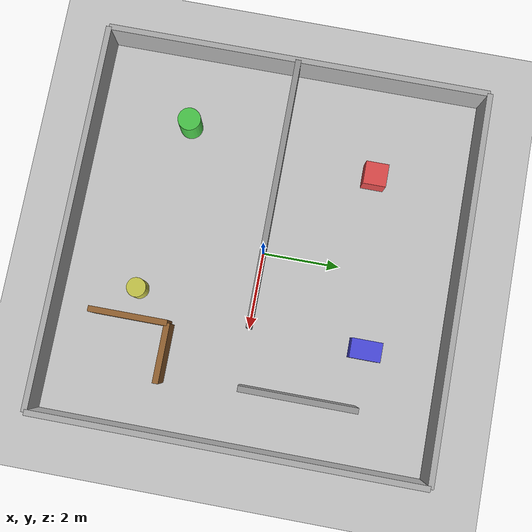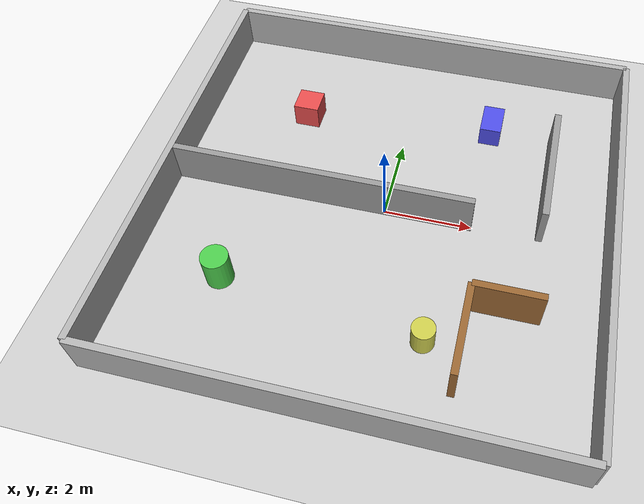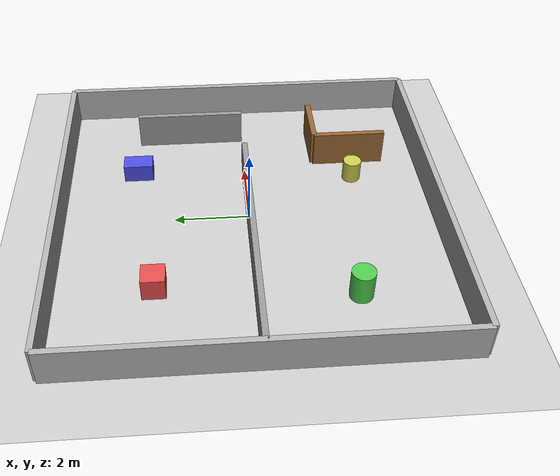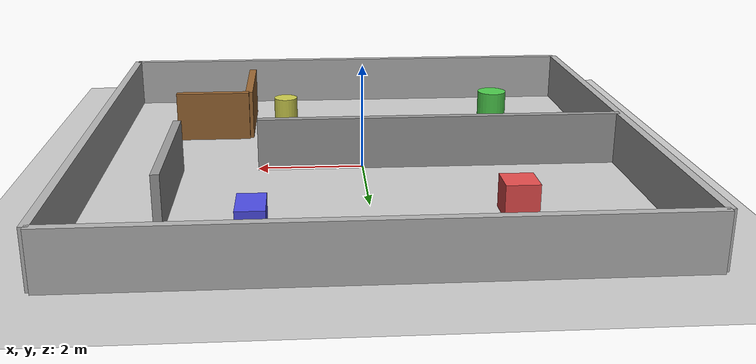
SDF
<?xml version="1.0" ?>
<sdf version="1.6">
  <world name="jetauto_test_world">

    <!-- Physics -->
    <physics type="ode">
      <real_time_update_rate>1000.0</real_time_update_rate>
      <max_step_size>0.001</max_step_size>
      <real_time_factor>1</real_time_factor>
    </physics>

    <!-- Sun -->
    <include>
      <uri>model://sun</uri>
    </include>

    <!-- Ground Plane -->
    <include>
      <uri>model://ground_plane</uri>
    </include>

    <scene>
      <ambient>0.4 0.4 0.4 1</ambient>
      <background>0.7 0.7 0.7 1</background>
      <shadows>true</shadows>
    </scene>

    <!-- GUI camera -->
    <gui fullscreen="0">
      <camera name="user_camera">
        <pose>0 0 12 0 1.5707 0</pose>
        <view_controller>orbit</view_controller>
      </camera>
    </gui>

    <!-- ==================== WALLS (outer boundary) ==================== -->
    <!-- North wall -->
    <model name="wall_north">
      <static>true</static>
      <pose>0 5 0.5 0 0 0</pose>
      <link name="link">
        <collision name="collision">
          <geometry><box><size>10 0.15 1.0</size></box></geometry>
        </collision>
        <visual name="visual">
          <geometry><box><size>10 0.15 1.0</size></box></geometry>
          <material><ambient>0.6 0.6 0.6 1</ambient><diffuse>0.7 0.7 0.7 1</diffuse></material>
        </visual>
      </link>
    </model>

    <!-- South wall -->
    <model name="wall_south">
      <static>true</static>
      <pose>0 -5 0.5 0 0 0</pose>
      <link name="link">
        <collision name="collision">
          <geometry><box><size>10 0.15 1.0</size></box></geometry>
        </collision>
        <visual name="visual">
          <geometry><box><size>10 0.15 1.0</size></box></geometry>
          <material><ambient>0.6 0.6 0.6 1</ambient><diffuse>0.7 0.7 0.7 1</diffuse></material>
        </visual>
      </link>
    </model>

    <!-- East wall -->
    <model name="wall_east">
      <static>true</static>
      <pose>5 0 0.5 0 0 0</pose>
      <link name="link">
        <collision name="collision">
          <geometry><box><size>0.15 10 1.0</size></box></geometry>
        </collision>
        <visual name="visual">
          <geometry><box><size>0.15 10 1.0</size></box></geometry>
          <material><ambient>0.6 0.6 0.6 1</ambient><diffuse>0.7 0.7 0.7 1</diffuse></material>
        </visual>
      </link>
    </model>

    <!-- West wall -->
    <model name="wall_west">
      <static>true</static>
      <pose>-5 0 0.5 0 0 0</pose>
      <link name="link">
        <collision name="collision">
          <geometry><box><size>0.15 10 1.0</size></box></geometry>
        </collision>
        <visual name="visual">
          <geometry><box><size>0.15 10 1.0</size></box></geometry>
          <material><ambient>0.6 0.6 0.6 1</ambient><diffuse>0.7 0.7 0.7 1</diffuse></material>
        </visual>
      </link>
    </model>

    <!-- ==================== INTERIOR WALLS ==================== -->
    <!-- Horizontal divider (creates two rooms) -->
    <model name="wall_divider_h">
      <static>true</static>
      <pose>-1.5 0 0.5 0 0 0</pose>
      <link name="link">
        <collision name="collision">
          <geometry><box><size>7 0.15 1.0</size></box></geometry>
        </collision>
        <visual name="visual">
          <geometry><box><size>7 0.15 1.0</size></box></geometry>
          <material><ambient>0.5 0.5 0.5 1</ambient><diffuse>0.6 0.6 0.6 1</diffuse></material>
        </visual>
      </link>
    </model>

    <!-- Doorway gap wall (vertical segment leaving a gap in the divider) -->
    <model name="wall_corridor">
      <static>true</static>
      <pose>3.5 1.5 0.5 0 0 0</pose>
      <link name="link">
        <collision name="collision">
          <geometry><box><size>0.15 3 1.0</size></box></geometry>
        </collision>
        <visual name="visual">
          <geometry><box><size>0.15 3 1.0</size></box></geometry>
          <material><ambient>0.5 0.5 0.5 1</ambient><diffuse>0.6 0.6 0.6 1</diffuse></material>
        </visual>
      </link>
    </model>

    <!-- ==================== OBSTACLES ==================== -->
    <!-- Box obstacle 1 -->
    <model name="obstacle_box_1">
      <static>true</static>
      <pose>-2.5 2.5 0.3 0 0 0</pose>
      <link name="link">
        <collision name="collision">
          <geometry><box><size>0.6 0.6 0.6</size></box></geometry>
        </collision>
        <visual name="visual">
          <geometry><box><size>0.6 0.6 0.6</size></box></geometry>
          <material><ambient>0.8 0.2 0.2 1</ambient><diffuse>0.9 0.3 0.3 1</diffuse></material>
        </visual>
      </link>
    </model>

    <!-- Box obstacle 2 -->
    <model name="obstacle_box_2">
      <static>true</static>
      <pose>2.0 3.0 0.25 0 0 0</pose>
      <link name="link">
        <collision name="collision">
          <geometry><box><size>0.5 0.8 0.5</size></box></geometry>
        </collision>
        <visual name="visual">
          <geometry><box><size>0.5 0.8 0.5</size></box></geometry>
          <material><ambient>0.2 0.2 0.8 1</ambient><diffuse>0.3 0.3 0.9 1</diffuse></material>
        </visual>
      </link>
    </model>

    <!-- Cylinder obstacle -->
    <model name="obstacle_cylinder_1">
      <static>true</static>
      <pose>-3.0 -2.5 0.4 0 0 0</pose>
      <link name="link">
        <collision name="collision">
          <geometry><cylinder><radius>0.3</radius><length>0.8</length></cylinder></geometry>
        </collision>
        <visual name="visual">
          <geometry><cylinder><radius>0.3</radius><length>0.8</length></cylinder></geometry>
          <material><ambient>0.2 0.7 0.2 1</ambient><diffuse>0.3 0.8 0.3 1</diffuse></material>
        </visual>
      </link>
    </model>

    <!-- Cylinder obstacle 2 -->
    <model name="obstacle_cylinder_2">
      <static>true</static>
      <pose>1.5 -3.0 0.3 0 0 0</pose>
      <link name="link">
        <collision name="collision">
          <geometry><cylinder><radius>0.25</radius><length>0.6</length></cylinder></geometry>
        </collision>
        <visual name="visual">
          <geometry><cylinder><radius>0.25</radius><length>0.6</length></cylinder></geometry>
          <material><ambient>0.7 0.7 0.2 1</ambient><diffuse>0.8 0.8 0.3 1</diffuse></material>
        </visual>
      </link>
    </model>

    <!-- L-shaped wall obstacle -->
    <model name="obstacle_L_1">
      <static>true</static>
      <pose>3.0 -2.0 0.5 0 0 0</pose>
      <link name="link">
        <collision name="collision">
          <geometry><box><size>1.5 0.15 1.0</size></box></geometry>
        </collision>
        <visual name="visual">
          <geometry><box><size>1.5 0.15 1.0</size></box></geometry>
          <material><ambient>0.5 0.3 0.1 1</ambient><diffuse>0.6 0.4 0.2 1</diffuse></material>
        </visual>
      </link>
    </model>

    <model name="obstacle_L_2">
      <static>true</static>
      <pose>2.25 -3.0 0.5 0 0 0</pose>
      <link name="link">
        <collision name="collision">
          <geometry><box><size>0.15 2.0 1.0</size></box></geometry>
        </collision>
        <visual name="visual">
          <geometry><box><size>0.15 2.0 1.0</size></box></geometry>
          <material><ambient>0.5 0.3 0.1 1</ambient><diffuse>0.6 0.4 0.2 1</diffuse></material>
        </visual>
      </link>
    </model>

  </world>
</sdf>
